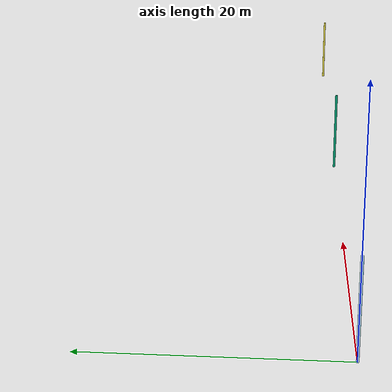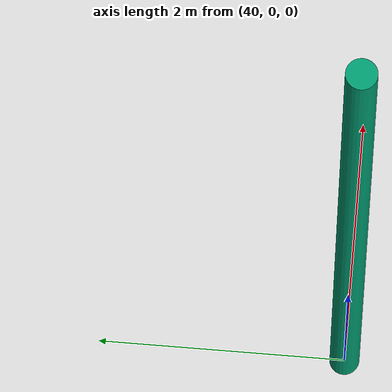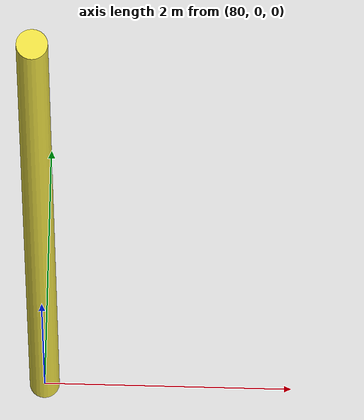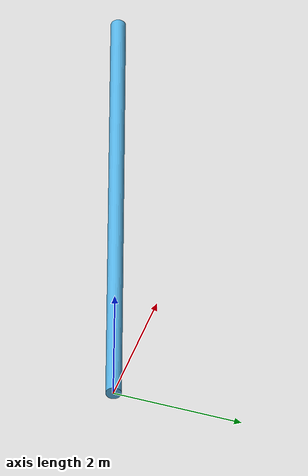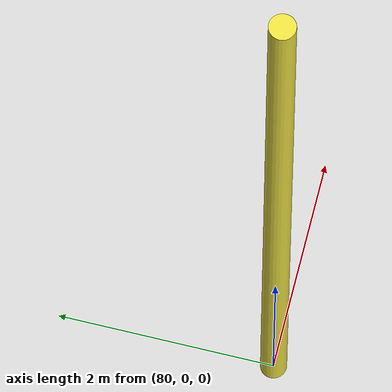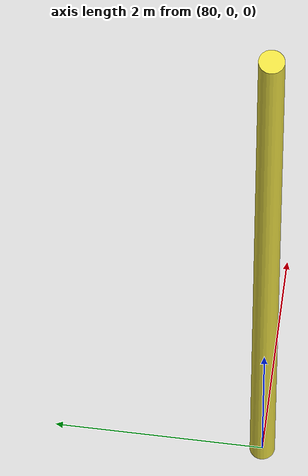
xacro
<?xml version="1.0"?>
<robot name="relightx_highway" xmlns:xacro="http://ros.org/wiki/xacro">
  <link name="world"/>
  <xacro:macro name="lighting_pole" params="name x">
    <link name="${name}">
      <visual>
        <origin xyz="${x} 0 4" rpy="0 0 0"/>
        <geometry>
          <cylinder radius="0.12" length="8.0"/>
        </geometry>
      </visual>
    </link>
    <joint name="${name}_joint" type="fixed">
      <parent link="world"/>
      <child link="${name}"/>
    </joint>
  </xacro:macro>
  <xacro:lighting_pole name="pole_001" x="0"/>
  <xacro:lighting_pole name="pole_002" x="40"/>
  <xacro:lighting_pole name="pole_003" x="80"/>
</robot>
